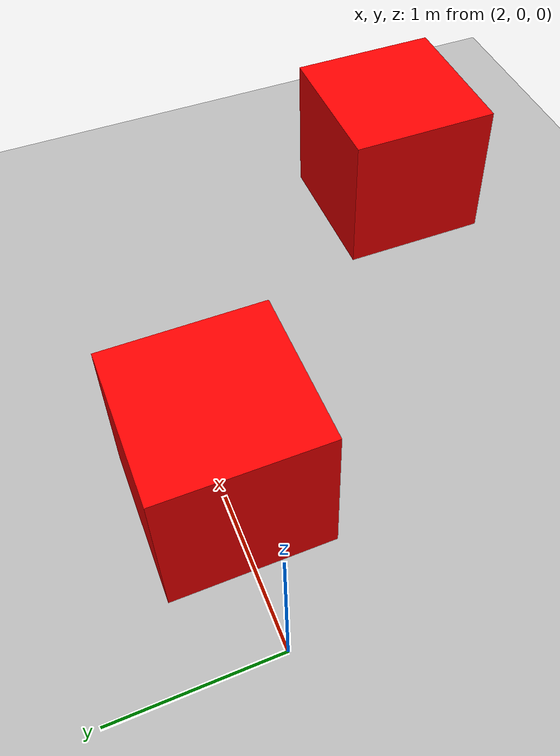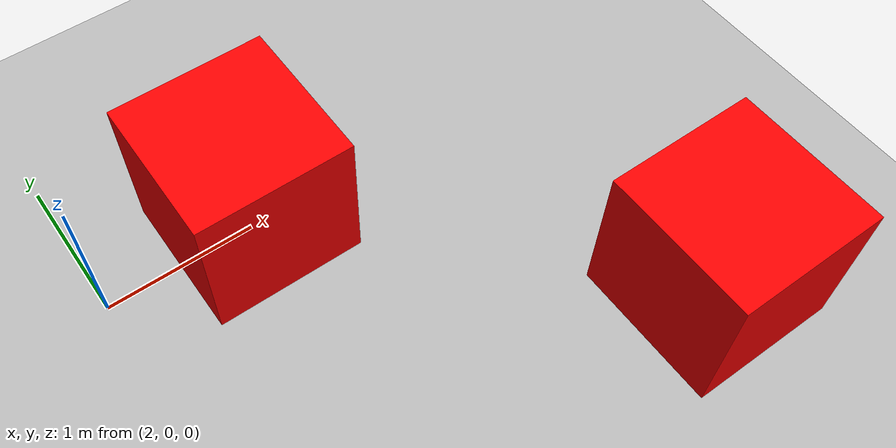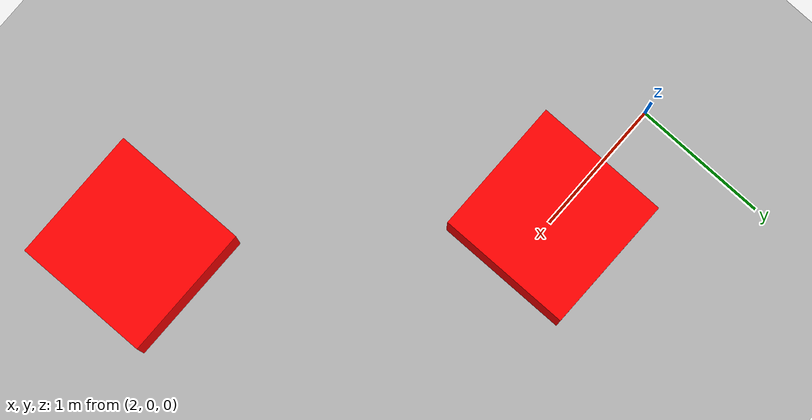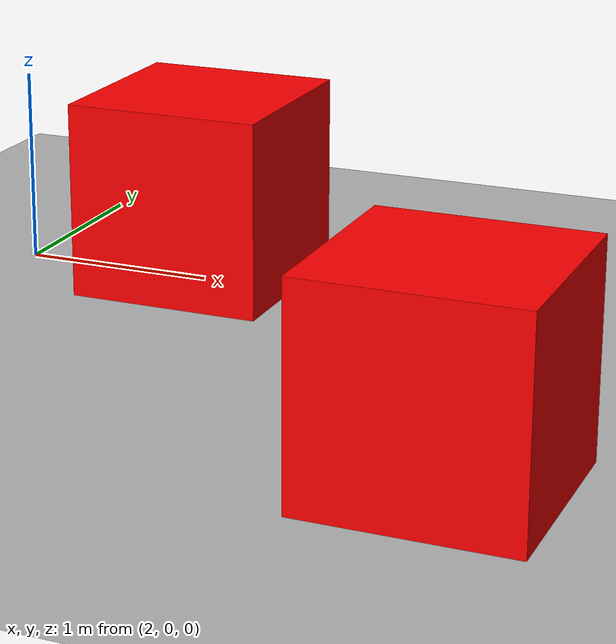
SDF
<?xml version="1.0"?>

<sdf version="1.7">

  <world name="obstacle_world">

    <!-- PHYSICS -->
    <physics name="1ms" type="ignored">
      <max_step_size>0.001</max_step_size>
      <real_time_factor>1.0</real_time_factor>
    </physics>

    <!-- PHYSICS SYSTEM -->
    <plugin
      filename="libignition-gazebo-physics-system.so"
      name="ignition::gazebo::systems::Physics">
    </plugin>

    <!-- USER COMMANDS -->
    <plugin
      filename="libignition-gazebo-user-commands-system.so"
      name="ignition::gazebo::systems::UserCommands">
    </plugin>

    <!-- SCENE BROADCASTER -->
    <plugin
      filename="libignition-gazebo-scene-broadcaster-system.so"
      name="ignition::gazebo::systems::SceneBroadcaster">
    </plugin>

    <!-- SENSOR SYSTEM: REQUIRED FOR LIDAR -->
    <plugin
      filename="libignition-gazebo-sensors-system.so"
      name="ignition::gazebo::systems::Sensors">

      <render_engine>ogre2</render_engine>

    </plugin>

    <!-- GROUND -->
    <model name="ground">

      <static>true</static>

      <link name="ground_link">

        <collision name="ground_collision">

          <geometry>
            <plane>

              <normal>0 0 1</normal>

              <size>30 30</size>

            </plane>
          </geometry>

        </collision>

        <visual name="ground_visual">

          <geometry>
            <plane>

              <normal>0 0 1</normal>

              <size>30 30</size>

            </plane>
          </geometry>

          <material>

            <diffuse>0.7 0.7 0.7 1</diffuse>

          </material>

        </visual>

      </link>

    </model>

    <!-- SUN -->
    <light name="sun" type="directional">

      <pose>0 0 10 0 0 0</pose>

      <direction>-0.5 0.1 -0.9</direction>

      <diffuse>1 1 1 1</diffuse>

    </light>

    <!-- OBSTACLE 1 -->
    <model name="obstacle_1">

      <static>true</static>

      <pose>3 0 0.5 0 0 0</pose>

      <link name="link">

        <collision name="collision">

          <geometry>

            <box>

              <size>1 1 1</size>

            </box>

          </geometry>

        </collision>

        <visual name="visual">

          <geometry>

            <box>

              <size>1 1 1</size>

            </box>

          </geometry>

          <material>

            <diffuse>1 0 0 1</diffuse>

          </material>

        </visual>

      </link>

    </model>

    <!-- OBSTACLE 2 -->
    <model name="obstacle_2">

      <static>true</static>

      <pose>5 -2 0.5 0 0 0</pose>

      <link name="link">

        <collision name="collision">

          <geometry>

            <box>

              <size>1 1 1</size>

            </box>

          </geometry>

        </collision>

        <visual name="visual">

          <geometry>

            <box>

              <size>1 1 1</size>

            </box>

          </geometry>

          <material>

            <diffuse>1 0 0 1</diffuse>

          </material>

        </visual>

      </link>

    </model>

  </world>

</sdf>
